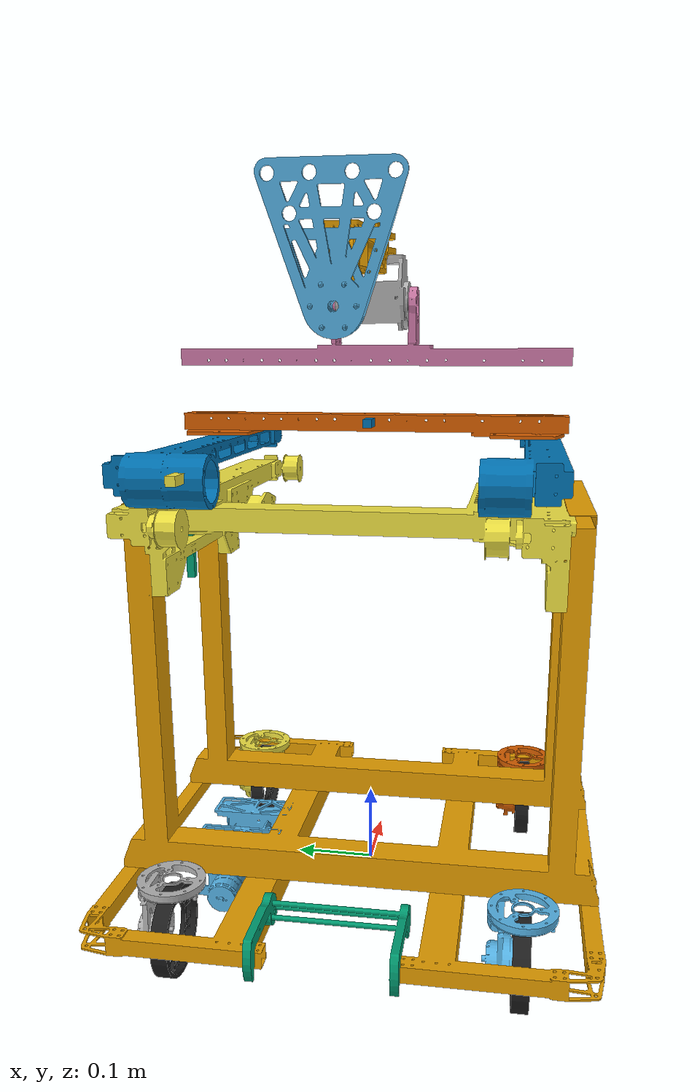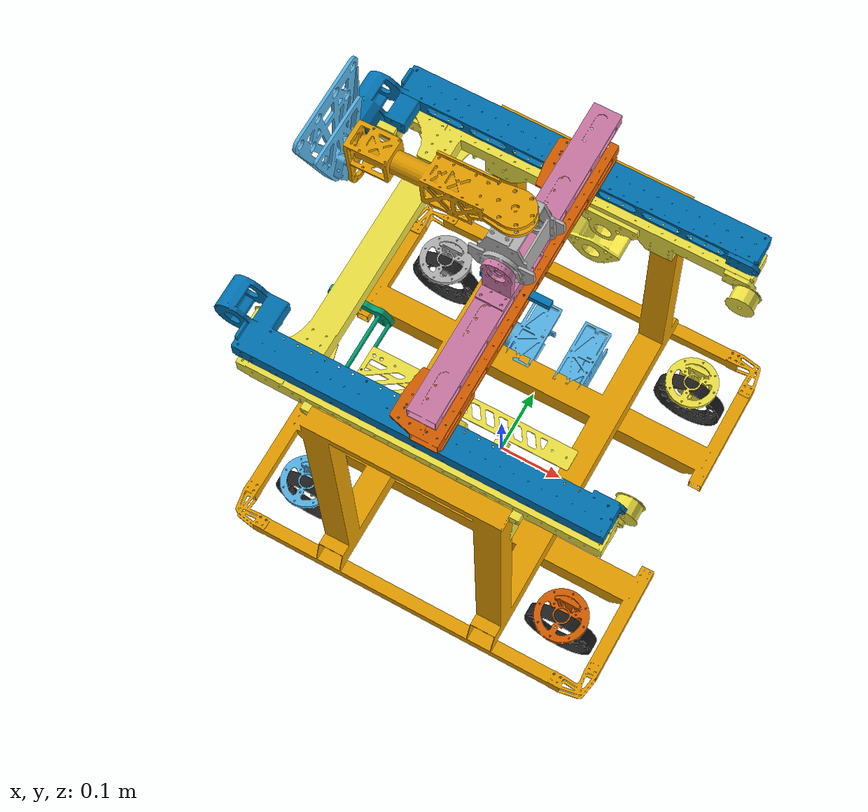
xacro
<?xml version="1.0" encoding="utf-8"?>
<robot xmlns:xacro="http://www.ros.org/wiki/xacro" name="engineer">
    <xacro:arg name="load_chassis" default="true"/>
    <xacro:arg name="load_arm" default="true"/>
    <xacro:arg name="use_simulation" default="false"/>

    <xacro:if value="$(arg load_chassis)">
        <xacro:include filename="$(find robot_description)/urdf/engineer/chassis.urdf.xacro"/>
        <xacro:chassis/>
    </xacro:if>

    <xacro:if value="$(arg load_arm)">
        <xacro:include filename="$(find robot_description)/urdf/engineer/arm.urdf.xacro"/>
        <xacro:arm connected_to="base_link" simulation="$(arg use_simulation)"/>
        <xacro:include filename="$(find robot_description)/urdf/engineer/arm.transmission.xacro"/>
        <xacro:arm_transmission simulation="$(arg use_simulation)"/>
    </xacro:if>

    <xacro:if value="$(arg use_simulation)">
        <gazebo>
            <plugin name="rm_ros_control" filename="librm_robot_hw_sim.so">
                <robotNamespace>/</robotNamespace>
                <robotSimType>rm_gazebo/RmRobotHWSim</robotSimType>
            </plugin>
        </gazebo>
    </xacro:if>

</robot>

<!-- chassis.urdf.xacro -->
<robot xmlns:xacro="http://www.ros.org/wiki/xacro" name="chassis">

    <xacro:include filename="$(find robot_description)/urdf/common/swerve_drive.urdf.xacro"/>
    <!-- https://upload.wikimedia.org/wikipedia/commons/5/52/Wheelbase_and_Track.png -->
    <xacro:property name="wheel_track" value="0.423"/>
    <xacro:property name="wheel_base" value="0.412"/>
    <xacro:property name="wheel_offset_z" value="0.06795"/>

    <xacro:macro name="chassis">

        <link name="base_link">
            <inertial>
                <mass value="12.252018"/>
                <origin xyz="0.004494 0.012027 0.169606"/>
                <inertia ixx="1.047e0" ixy="-4.114e-3" ixz="-1.395e-2" iyy="8.849e-1" iyz="-1.357e-2" izz="6.167e-1"/>
            </inertial>
            <visual>
                <origin xyz="0 0 0" rpy="0 0 0"/>
                <geometry>
                    <mesh filename="package://robot_description/meshes/engineer/base.stl" scale="0.001 0.001 0.001"/>
                </geometry>
            </visual>
            <collision>
                <origin xyz="-0.0486 0.2515 0.5235" rpy="0 0 0"/>
                <geometry>
                    <box size="0.0984 0.055 0.067"/>
                </geometry>
            </collision>
            <collision>
                <origin xyz="-0.0486 -0.2515 0.5235" rpy="0 0 0"/>
                <geometry>
                    <box size="0.0984 0.055 0.067"/>
                </geometry>
            </collision>
            <collision>
                <origin xyz="0.125 0.24675 0.285" rpy="0 0 0"/>
                <geometry>
                    <box size="0.04 0.0365 0.41"/>
                </geometry>
            </collision>
            <collision>
                <origin xyz="-0.125 0.24675 0.285" rpy="0 0 0"/>
                <geometry>
                    <box size="0.04 0.0365 0.41"/>
                </geometry>
            </collision>
            <collision>
                <origin xyz="0.125 -0.24675 0.285" rpy="0 0 0"/>
                <geometry>
                    <box size="0.04 0.0365 0.41"/>
                </geometry>
            </collision>
            <collision>
                <origin xyz="-0.125 -0.24675 0.285" rpy="0 0 0"/>
                <geometry>
                    <box size="0.04 0.0365 0.41"/>
                </geometry>
            </collision>
            <collision>
                <origin xyz="0.125 0. 0.06" rpy="0 0 0"/>
                <geometry>
                    <box size="0.04 0.59 0.04"/>
                </geometry>
            </collision>
            <collision>
                <origin xyz="-0.125 0. 0.06" rpy="0 0 0"/>
                <geometry>
                    <box size="0.04 0.59 0.04"/>
                </geometry>
            </collision>
            <collision>
                <origin xyz="0. 0.115076 0.02" rpy="0 0 0"/>
                <geometry>
                    <box size="0.55 0.04 0.04"/>
                </geometry>
            </collision>
            <collision>
                <origin xyz="0. -0.115076 0.02" rpy="0 0 0"/>
                <geometry>
                    <box size="0.55 0.04 0.04"/>
                </geometry>
            </collision>
            <collision>
                <origin xyz="0.285 0.185 0.03" rpy="0 0 0"/>
                <geometry>
                    <box size="0.02 0.22 0.02"/>
                </geometry>
            </collision>
            <collision>
                <origin xyz="-0.285 0.185 0.03" rpy="0 0 0"/>
                <geometry>
                    <box size="0.02 0.22 0.02"/>
                </geometry>
            </collision>
            <collision>
                <origin xyz="0.285 -0.185 0.03" rpy="0 0 0"/>
                <geometry>
                    <box size="0.02 0.22 0.02"/>
                </geometry>
            </collision>
            <collision>
                <origin xyz="-0.285 -0.185 0.03" rpy="0 0 0"/>
                <geometry>
                    <box size="0.02 0.22 0.02"/>
                </geometry>
            </collision>
            <collision>
                <origin xyz="0. 0.285 0.03" rpy="0 0 0"/>
                <geometry>
                    <box size="0.59 0.02 0.02"/>
                </geometry>
            </collision>
            <collision>
                <origin xyz="0. -0.285 0.03" rpy="0 0 0"/>
                <geometry>
                    <box size="0.59 0.02 0.02"/>
                </geometry>
            </collision>
        </link>

        <link name="card">
            <inertial>
                <mass value="0.807434"/>
                <origin xyz="0.038318 -0.188972 -0.009577"/>
                <inertia ixx="3.069e-2" ixy="5.419e-3" ixz="2.460e-4" iyy="4.318e-3" iyz="3.398e-2"
                         izz="4.126e-3"/>
            </inertial>
            <visual>
                <origin xyz="0 0 0" rpy="0 0 0"/>
                <geometry>
                    <mesh filename="package://robot_description/meshes/engineer/card.stl" scale="0.001 0.001 0.001"/>
                </geometry>
            </visual>
            <collision>
                <geometry>
                    <mesh filename="package://robot_description/meshes/engineer/card_collision.stl"
                          scale="0.001 0.001 0.001"/>
                </geometry>
            </collision>
        </link>

        <link name="drag">
            <inertial>
                <mass value="0.252375"/>
                <origin xyz="-0.230445 -0.072148 0.051026"/>
                <inertia ixx="3.688e-3" ixy="-3.738e-3" ixz="2.667e-3" iyy="1.480e-2" iyz="1.299e-3" izz="1.663e-2"/>
            </inertial>
            <visual>
                <origin xyz="0 0 0" rpy="0 0 0"/>
                <geometry>
                    <mesh filename="package://robot_description/meshes/engineer/drag.stl"
                          scale="0.001 0.001 0.001"/>
                </geometry>
            </visual>
            <collision>
                <origin xyz="-0.041518 0.077 0.017" rpy="0 0 0"/>
                <geometry>
                    <box size="0.112768 0.009 0.018"/>
                </geometry>
            </collision>
            <collision>
                <origin xyz="-0.041518 -0.077 0.017" rpy="0 0 0"/>
                <geometry>
                    <box size="0.112768 0.009 0.018"/>
                </geometry>
            </collision>
        </link>

        <joint name="card_joint" type="revolute">
            <parent link="base_link"/>
            <child link="card"/>
            <origin xyz="0. 0.175076 -0.008" rpy="0 0 0"/>
            <axis xyz="1 0 0"/>
            <limit lower="-1000000" upper="1000000" velocity="1" effort="200"/>
        </joint>

        <joint name="drag_joint" type="revolute">
            <parent link="base_link"/>
            <child link="drag"/>
            <origin xyz="-0.245 -0.000076 0.06" rpy="0 0 0"/>
            <axis xyz="0 1 0"/>
            <limit lower="-6.28" upper="6.28" velocity="1" effort="200"/>
        </joint>

        <transmission name="trans_card_joint">
            <type>transmission_interface/SimpleTransmission</type>
            <actuator name="card_joint_motor">
                <mechanicalReduction>50.895</mechanicalReduction>
            </actuator>
            <joint name="card_joint">
                <offset>0</offset>
                <hardwareInterface>hardware_interface/EffortJointInterface</hardwareInterface>
            </joint>
        </transmission>

        <transmission name="trans_drag_joint">
            <type>transmission_interface/SimpleTransmission</type>
            <actuator name="drag_joint_motor">
                <mechanicalReduction>1</mechanicalReduction>
            </actuator>
            <joint name="drag_joint">
                <offset>0</offset>
                <hardwareInterface>hardware_interface/EffortJointInterface</hardwareInterface>
            </joint>
        </transmission>

        <xacro:swerve_drive prefix="left_front" connected_to="base_link"
                            x_offset="${wheel_track/2}" y_offset="${wheel_base/2}"
                            z_offset="${wheel_offset_z}"/>
        <xacro:swerve_drive prefix="right_front" connected_to="base_link"
                            x_offset="${wheel_track/2}" y_offset="${-wheel_base/2}"
                            z_offset="${wheel_offset_z}"/>
        <xacro:swerve_drive prefix="left_back" connected_to="base_link"
                            x_offset="${-wheel_track/2}" y_offset="${wheel_base/2}"
                            z_offset="${wheel_offset_z}"/>
        <xacro:swerve_drive prefix="right_back" connected_to="base_link"
                            x_offset="${-wheel_track/2}" y_offset="${-wheel_base/2}"
                            z_offset="${wheel_offset_z}"/>

        <xacro:swerve_transmission prefix="left_front" wheel_reduction="-13.733" pivot_offset="3.0629664"/>
        <xacro:swerve_transmission prefix="right_front" wheel_reduction="-13.733" pivot_offset="6.26861044"/>
        <xacro:swerve_transmission prefix="left_back" wheel_reduction="-13.733" pivot_offset="5.276003"/>
        <xacro:swerve_transmission prefix="right_back" wheel_reduction="-13.733" pivot_offset="2.3265657"/>

    </xacro:macro>

</robot>

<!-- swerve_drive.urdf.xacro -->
<robot xmlns:xacro="http://www.ros.org/wiki/xacro">

    <xacro:macro name="swerve_drive"
                 params="prefix x_offset y_offset z_offset  connected_to">

        <link name="${prefix}_pivot">
            <visual>
                <origin xyz="0 0 0" rpy="0 0 0"/>
                <geometry>
                    <mesh filename="package://robot_description/meshes/common/swerve_pivot.stl"
                          scale="0.001 0.001 0.001"/>
                </geometry>
            </visual>
            <inertial>
                <mass value="0.114131"/>
                <origin xyz="-0.00005 0.017079 -0.041536" rpy="0 0 0"/>
                <inertia ixx="1.335e-4" ixy="26.001e-9" ixz="65.031e-9" iyy="1.372e-4" iyz="20051.742e-9"
                         izz="66866.081e-9"/>
            </inertial>
        </link>

        <joint name="${prefix}_pivot_joint" type="revolute">
            <axis xyz="0 0 1"/>
            <origin xyz="${x_offset} ${y_offset} ${z_offset}" rpy="0 0 0"/>
            <parent link="${connected_to}"/>
            <child link="${prefix}_pivot"/>
            <dynamics damping="0.0" friction="0.1"/>
            <limit effort="1.2" velocity="50" lower="-1e10" upper="1e10"/>
        </joint>

        <link name="${prefix}_wheel">
            <visual>
                <origin xyz="0 0 0" rpy="0 0 0"/>
                <geometry>
                    <mesh filename="package://robot_description/meshes/common/swerve_wheel.stl"
                          scale="0.001 0.001 0.001"/>
                </geometry>
            </visual>
            <inertial>
                <mass value="0.267401"/>
                <origin xyz="-0.000004 0.000125 0.000001" rpy="0 0 0"/>
                <inertia ixx="3.585e-4" ixy="0" ixz="13.459e-9" iyy="6.846e-4" iyz="0"
                         izz="3.584e-4"/>
            </inertial>
            <collision>
                <origin xyz="0 0 0" rpy="${pi/2.} 0 0"/>
                <geometry>
                    <cylinder length="0.02" radius="0.055"/>
                </geometry>
            </collision>
        </link>

        <joint name="${prefix}_wheel_joint" type="revolute">
            <axis xyz="0 1 0"/>
            <origin xyz="0 0 -0.06635" rpy="0 0 0"/>
            <parent link="${prefix}_pivot"/>
            <child link="${prefix}_wheel"/>
            <limit effort="3" velocity="76" lower="-1e10" upper="1e10"/>
            <dynamics damping="0.0" friction="0.05"/>
        </joint>

        <gazebo reference="${prefix}_wheel">
            <mu1 value="1.0"/>
            <mu2 value="1.0"/>
            <kp value="1000000.0"/>
            <kd value="100.0"/>
            <material>Gazebo/Black</material>
        </gazebo>
    </xacro:macro>

    <xacro:macro name="swerve_transmission" params="prefix wheel_reduction  pivot_offset">

        <transmission name="${prefix}_pivot_trans">
            <type>transmission_interface/SimpleTransmission</type>
            <actuator name="${prefix}_pivot_motor">
                <mechanicalReduction>-1</mechanicalReduction>
            </actuator>
            <joint name="${prefix}_pivot_joint">
                <offset>${pivot_offset}</offset>
                <hardwareInterface>hardware_interface/EffortJointInterface</hardwareInterface>
            </joint>
        </transmission>

        <transmission name="${prefix}_wheel_trans">
            <type>transmission_interface/SimpleTransmission</type>
            <actuator name="${prefix}_wheel_motor">
                <mechanicalReduction>${wheel_reduction}</mechanicalReduction>
            </actuator>
            <joint name="${prefix}_wheel_joint">
                <hardwareInterface>hardware_interface/EffortJointInterface</hardwareInterface>
            </joint>
        </transmission>
    </xacro:macro>

</robot>

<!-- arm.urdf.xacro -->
<robot xmlns:xacro="http://www.ros.org/wiki/xacro" name="arm">

    <xacro:macro name="arm" params="connected_to simulation">
        <xacro:property name="threshold" value="0.1"/>
        <xacro:property name="joint1_lower_limit" value="0.0005736069829"/>
        <xacro:property name="joint1_upper_limit" value="0.6351414275302"/>
        <xacro:property name="joint2_upper_limit" value="0.3438321773"/>
        <xacro:property name="joint2_lower_limit" value="-0.2253643418193"/>
        <xacro:property name="joint3_upper_limit" value="0.2362959079343"/>
        <xacro:property name="joint3_lower_limit" value="-0.2253360962"/>
        <xacro:property name="joint4_upper_limit" value="0.34152550806"/>
        <xacro:property name="joint4_lower_limit" value="-0.296310718475"/>
        <xacro:property name="joint5_upper_limit" value="-0.00022605078282"/>
        <xacro:property name="joint5_lower_limit" value="-3.23240560816"/>
        <xacro:property name="joint6_upper_limit" value="0.798170237718"/>
        <xacro:property name="joint6_lower_limit" value="-4.2362368464"/>
        <xacro:property name="joint7_upper_limit" value="3.979137624343"/>
        <xacro:property name="joint7_lower_limit" value="-1.26312636630"/>

        <!--  link  -->
        <link name="link1">
            <inertial>
                <mass value="2.933612"/>
                <origin xyz="0.009153 -0.001831 0.028124"/>
                <inertia ixx="1.232e-1" ixy="-5.053e-4" ixz="7.076e-4" iyy="6.280e-2" iyz="2.855e-4" izz="1.773e-1"/>
            </inertial>
            <visual>
                <origin xyz="0 0 0" rpy="0 0 0"/>
                <geometry>
                    <mesh filename="package://robot_description/meshes/engineer/link1.stl" scale="0.001 0.001 0.001"/>
                </geometry>
            </visual>
            <collision>
                <origin xyz="0.004 0.1903 0.045" rpy="0 0 0"/>
                <geometry>
                    <box size="0.57 0.1356 0.045"/>
                </geometry>
            </collision>
            <collision>
                <origin xyz="0.004 -0.1903 0.045" rpy="0 0 0"/>
                <geometry>
                    <box size="0.57 0.1356 0.045"/>
                </geometry>
            </collision>
            <collision>
                <origin xyz="-0.185 0. 0.045" rpy="0 0 0"/>
                <geometry>
                    <box size="0.04 0.245 0.025"/>
                </geometry>
            </collision>
            <collision>
                <origin xyz="0. 0.237 -0.0175" rpy="0 0 0"/>
                <geometry>
                    <box size="0.29 0.042 0.08"/>
                </geometry>
            </collision>
            <collision>
                <origin xyz="0. -0.237 -0.0175" rpy="0 0 0"/>
                <geometry>
                    <box size="0.29 0.042 0.08"/>
                </geometry>
            </collision>
            <collision>
                <origin xyz="0.054 0.1815 0.003" rpy="0 0 0"/>
                <geometry>
                    <box size="0.086 0.069 0.039"/>
                </geometry>
            </collision>
            <collision>
                <origin xyz="0.054 -0.1815 0.003" rpy="0 0 0"/>
                <geometry>
                    <box size="0.086 0.069 0.039"/>
                </geometry>
            </collision>
        </link>

        <link name="link2_1">
            <inertial>
                <mass value="4.534716"/>
                <origin xyz="-0.059835 -0.017665 -0.006662"/>
                <inertia ixx="1.613e-1" ixy="4.286e-3" ixz="-3.019e-4" iyy="1.536e-1" iyz="-1.859e-3" izz="3.117e-1"/>
            </inertial>
            <visual>
                <origin xyz="0 0 0" rpy="0 0 0"/>
                <geometry>
                    <mesh filename="package://robot_description/meshes/engineer/link2_1.stl" scale="0.001 0.001 0.001"/>
                </geometry>
            </visual>
            <collision>
                <origin xyz="0.01275 -0.1835 -0.011" rpy="0 0 0"/>
                <geometry>
                    <box size="0.5455 0.124 0.07"/>
                </geometry>
            </collision>
            <collision>
                <origin xyz="0.01275 0.1955 -0.011" rpy="0 0 0"/>
                <geometry>
                    <box size="0.5455 0.1 0.07"/>
                </geometry>
            </collision>
            <collision>
                <origin xyz="-0.283 -0.134 0.003" rpy="0 0 0"/>
                <geometry>
                    <box size="0.054 0.12 0.054"/>
                </geometry>
            </collision>
            <collision>
                <origin xyz="-0.283 0.134 0.003" rpy="0 0 0"/>
                <geometry>
                    <box size="0.054 0.12 0.054"/>
                </geometry>
            </collision>
        </link>

        <link name="link2_2">
            <inertial>
                <mass value="0.95156"/>
                <origin xyz="-0.001706 -0.000534 0.016649"/>
                <inertia ixx="1.271e-2" ixy="3.344217e-6" ixz="2.5531018e-5" iyy="8.153e-4" iyz="-3.333465e-6"
                         izz="1.244e-2"/>
            </inertial>
            <visual>
                <geometry>
                    <mesh filename="package://robot_description/meshes/engineer/link2_2.stl" scale="0.001 0.001 0.001"/>
                </geometry>
                <origin xyz="0 0 0" rpy="0 0 0"/>
            </visual>
            <collision>
                <origin xyz="-0.001 0 0.0015" rpy="0 0 0"/>
                <geometry>
                    <box size="0.114 0.475 0.031"/>
                </geometry>
            </collision>
            <collision>
                <origin xyz="0.015 0 0.044" rpy="0 0 0"/>
                <geometry>
                    <box size="0.082 0.122 0.054"/>
                </geometry>
            </collision>
        </link>

        <link name="link3">
            <inertial>
                <mass value="0.739277"/>
                <origin xyz="0.000853 -0.001219 0.003256"/>
                <inertia ixx="9.950e-3" ixy="-1.181569e-6" ixz="1.1018936e-5" iyy="3.150e-4" iyz="3.7875649e-5"
                         izz="9.892e-3"/>
            </inertial>
            <visual>
                <origin xyz="0 0 0" rpy="0 0 0"/>
                <geometry>
                    <mesh filename="package://robot_description/meshes/engineer/link3.stl" scale="0.001 0.001 0.001"/>
                </geometry>
            </visual>
            <collision>
                <origin xyz="0. 0. 0.005" rpy="0 0 0"/>
                <geometry>
                    <box size="0.052 0.475 0.03"/>
                </geometry>
            </collision>
            <collision>
                <origin xyz="0. 0. 0.056" rpy="0 0 0"/>
                <geometry>
                    <box size="0.052 0.144 0.072"/>
                </geometry>
            </collision>
        </link>

        <link name="link4">
            <inertial>
                <mass value="0.597915"/>
                <origin xyz="0.0033 -0.051861 0.000004"/>
                <inertia ixx="3.027e-3" ixy="-6.403167e-6" ixz="2.37196e-7" iyy="2.774e-4" iyz="-7.08963e-7"
                         izz="3.084e-3"/>
            </inertial>
            <visual>
                <origin xyz="0 0 0" rpy="0 0 0"/>
                <geometry>
                    <mesh filename="package://robot_description/meshes/engineer/link4.stl" scale="0.001 0.001 0.001"/>
                </geometry>
            </visual>
            <collision>
                <origin xyz="0.01475 -0.041 0." rpy="0 0 0"/>
                <geometry>
                    <box size="0.085 0.168 0.067"/>
                </geometry>
            </collision>
        </link>

        <link name="link5">
            <inertial>
                <mass value="0.705206"/>
                <origin xyz="-0.030997 0.000129 0.038143"/>
                <inertia ixx="4.444e-3" ixy="8.7593e-7" ixz="4.924e-4" iyy="5.629e-3" iyz="-7.662224e-6"
                         izz="1.390e-3"/>
            </inertial>
            <visual>
                <origin xyz="0 0 0" rpy="0 0 0"/>
                <geometry>
                    <mesh filename="package://robot_description/meshes/engineer/link5.stl" scale="0.001 0.001 0.001"/>
                </geometry>
            </visual>
            <collision>
                <origin xyz="-0.011 0. 0.103" rpy="0 0 0"/>
                <geometry>
                    <box size="0.056 0.054 0.26"/>
                </geometry>
            </collision>
            <collision>
                <origin xyz="-0.065 0. 0.2255" rpy="0 0 0"/>
                <geometry>
                    <box size="0.052 0.054 0.015"/>
                </geometry>
            </collision>
            <collision>
                <origin xyz="-0.0665 0. 0." rpy="0 0 0"/>
                <geometry>
                    <box size="0.055 0.054 0.054"/>
                </geometry>
            </collision>
        </link>

        <link name="link6">
            <inertial>
                <mass value="0.771338"/>
                <origin xyz="0.04148 -0.000028 -0.028949"/>
                <inertia ixx="2.206e-3" ixy="-3.0455e-8" ixz="-1.041e-4" iyy="4.988e-3" iyz="-4.58505e-7"
                         izz="3.998e-3"/>
            </inertial>
            <visual>
                <origin xyz="0 0 0" rpy="0 0 0"/>
                <geometry>
                    <mesh filename="package://robot_description/meshes/engineer/link6.stl" scale="0.001 0.001 0.001"/>
                </geometry>
            </visual>
            <collision>
                <origin xyz="0. 0. -0.04855" rpy="0 0 0"/>
                <geometry>
                    <box size="0.048 0.054 0.0971"/>
                </geometry>
            </collision>
            <collision>
                <origin xyz="0.0535 0. -0.0025" rpy="0 0 0"/>
                <geometry>
                    <box size="0.167 0.160 0.005"/>
                </geometry>
            </collision>
            <collision>
                <origin xyz="0.0995 0. 0.005" rpy="0 0 0"/>
                <geometry>
                    <box size="0.075 0.16 0.07"/>
                </geometry>
            </collision>
        </link>

        <joint name="joint1" type="prismatic">
            <parent link="${connected_to}"/>
            <child link="link1"/>
            <origin xyz="0 0 0.1375" rpy="0 0 0"/>
            <axis xyz="0 0 1"/>
            <limit lower="${joint1_lower_limit}" upper="${joint1_upper_limit}" velocity="1" effort="200"/>
        </joint>

        <joint name="joint2" type="prismatic">
            <parent link="link1"/>
            <child link="link2_1"/>
            <origin xyz="0. 0. 0.098707" rpy="0 0 0"/>
            <axis xyz="1 0 0"/>
            <limit lower="${joint2_lower_limit}" upper="${joint2_upper_limit}" velocity="1" effort="200"/>
        </joint>

        <joint name="joint3" type="prismatic">
            <parent link="link2_1"/>
            <child link="link2_2"/>
            <origin xyz="0.022 0. 0.034" rpy="0 0 0"/>
            <axis xyz="1 0 0"/>
            <limit lower="${joint3_lower_limit}" upper="${joint3_upper_limit}" velocity="1" effort="200"/>
        </joint>

        <joint name="joint4" type="prismatic">
            <parent link="link2_2"/>
            <child link="link3"/>
            <origin xyz="0. 0. 0.068" rpy="0 0 0"/>
            <axis xyz="0 1 0"/>
            <limit lower="${joint4_lower_limit}" upper="${joint4_upper_limit}" velocity="1" effort="200"/>
        </joint>

        <joint name="joint5" type="revolute">
            <parent link="link3"/>
            <child link="link4"/>
            <origin xyz="0. 0. 0.069" rpy="0 0 0"/>
            <axis xyz="0 1 0"/>
            <limit lower="${joint5_lower_limit}" upper="${joint5_upper_limit}" velocity="10" effort="200"/>
        </joint>

        <joint name="joint6" type="revolute">
            <parent link="link4"/>
            <child link="link5"/>
            <origin xyz="0.06925 0. 0" rpy="0 0 0"/>
            <axis xyz="1 0 0"/>
            <limit lower="${joint6_lower_limit}" upper="${joint6_upper_limit}" velocity="10" effort="200"/>
        </joint>

        <joint name="joint7" type="revolute">
            <parent link="link5"/>
            <child link="link6"/>
            <origin xyz="-0.06925 0 0.255" rpy="0 0 0"/>
            <axis xyz="0 0 1"/>
            <limit lower="${joint7_lower_limit}" upper="${joint7_upper_limit}" velocity="10" effort="200"/>
        </joint>

        <xacro:unless value="${simulation}">
            <link name="mimic_link1">
                <inertial>
                    <mass value="0.1"/>
                    <origin xyz="0. 0. 0."/>
                    <inertia ixx="0" ixy="0" ixz="0" iyy="0" iyz="0" izz="0"/>
                </inertial>
                <visual>
                    <origin xyz="0. 0.237 -0.0175" rpy="0 0 0"/>
                    <geometry>
                        <box size="0.01 0.01 0.1"/>
                    </geometry>
                </visual>
                <collision>
                    <origin xyz="0. 0 0." rpy="0 0 0"/>
                    <geometry>
                        <box size="0. 0. 0."/>
                    </geometry>
                </collision>
            </link>

            <link name="mimic_link2_1">
                <inertial>
                    <mass value="0.1"/>
                    <origin xyz="0. 0. 0."/>
                    <inertia ixx="0" ixy="0" ixz="0" iyy="0" iyz="0" izz="0"/>
                </inertial>
                <visual>
                    <origin xyz="-0.283 0.134 0.003" rpy="0 0 0"/>
                    <geometry>
                        <box size="0.1 0.01 0.01"/>
                    </geometry>
                </visual>
                <collision>
                    <origin xyz="0. 0 0." rpy="0 0 0"/>
                    <geometry>
                        <box size="0. 0. 0."/>
                    </geometry>
                </collision>
            </link>

            <link name="mimic_link2_2">
                <inertial>
                    <mass value="0.1"/>
                    <origin xyz="0. 0. 0."/>
                    <inertia ixx="0" ixy="0" ixz="0" iyy="0" iyz="0" izz="0"/>
                </inertial>
                <visual>
                    <origin xyz="-0.001 0 0.0015" rpy="0 0 0"/>
                    <geometry>
                        <box size="0.1 0.01 0.01"/>
                    </geometry>
                </visual>
                <collision>
                    <origin xyz="0. 0 0." rpy="0 0 0"/>
                    <geometry>
                        <box size="0. 0. 0."/>
                    </geometry>
                </collision>
            </link>

            <joint name="mimic_joint1" type="prismatic">
                <parent link="${connected_to}"/>
                <child link="mimic_link1"/>
                <origin xyz="0 0 0.1375" rpy="0 0 0"/>
                <axis xyz="0 0 1"/>
                <limit lower="${joint1_lower_limit}" upper="${joint1_upper_limit}" velocity="1" effort="200"/>
            </joint>

            <joint name="mimic_joint2" type="prismatic">
                <parent link="link1"/>
                <child link="mimic_link2_1"/>
                <origin xyz="0. 0. 0.098707" rpy="0 0 0"/>
                <axis xyz="1 0 0"/>
                <limit lower="${joint2_lower_limit}" upper="${joint2_upper_limit}" velocity="1" effort="200"/>
            </joint>

            <joint name="mimic_joint3" type="prismatic">
                <parent link="link2_1"/>
                <child link="mimic_link2_2"/>
                <origin xyz="0.022 0. 0.034" rpy="0 0 0"/>
                <axis xyz="1 0 0"/>
                <limit lower="${joint3_lower_limit}" upper="${joint3_upper_limit}" velocity="1" effort="200"/>
            </joint>
        </xacro:unless>
    </xacro:macro>
</robot>
